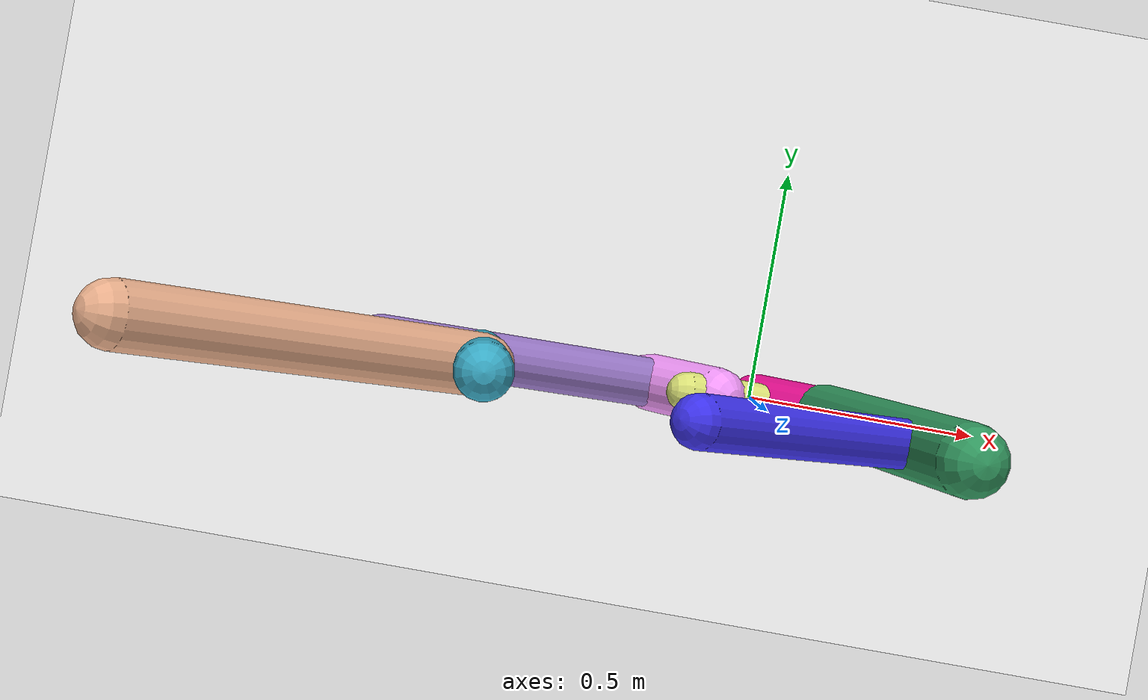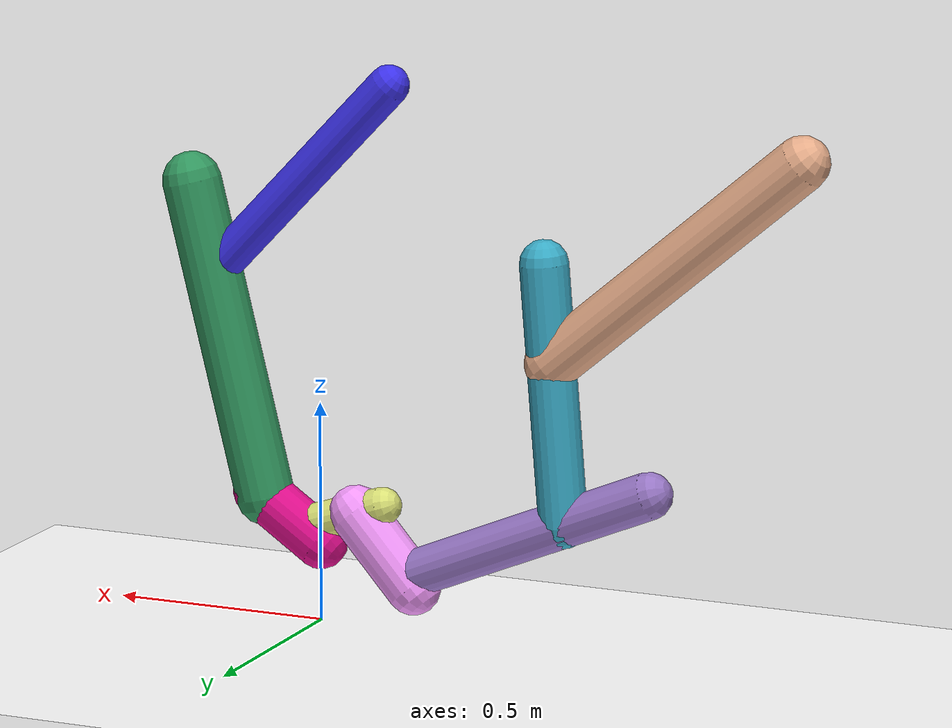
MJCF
<mujoco model="morphology">
  <option timestep="0.01"/>
  <default>
    <default class="/"/>
    <default class="0/"/>
    <default class="0/1/"/>
    <default class="0/1/2/"/>
    <default class="0/3/"/>
    <default class="0/3/4/"/>
    <default class="0/3/4/5/"/>
    <default class="0/3/4/5/6/"/>
    <default class="0/3/4/5/6/7/"/>
  </default>
  <asset>
    <texture name="texplane" type="2d" builtin="checker" rgb1="0.10000000000000001 0.20000000000000001 0.29999999999999999" rgb2="0.20000000000000001 0.29999999999999999 0.40000000000000002" width="300" height="300"/>
    <material name="MatPlane" class="/" texture="texplane" texrepeat="20 20" specular="1" shininess="1" reflectance="0.5"/>
  </asset>
  <worldbody>
    <light name="//unnamed_light_0" class="/" directional="true" pos="0 0 1.5" dir="0 0 -1.3" cutoff="100" exponent="1" diffuse="1 1 1" specular="0.10000000000000001 0.10000000000000001 0.10000000000000001"/>
    <geom name="ground" class="/" type="plane" size="15 15 0.5" material="MatPlane" rgba="1 1 1 1"/>
    <site name="body" class="/" size="9.9999999999999995e-07 9.9999999999999995e-07 9.9999999999999995e-07" pos="0 0 0.17978496700525284"/>
    <body pos="0 0 0.17978496700525284" name="0/">
      <joint name="0/rootx/" class="/" type="slide" axis="1 0 0" limited="false" stiffness="0" armature="0" damping="0"/>
      <joint name="0/rootz/" class="/" type="slide" axis="0 0 1" limited="false" stiffness="0" armature="0" damping="0"/>
      <joint name="0/rooty/" class="/" type="hinge" axis="0 1 0" limited="false" stiffness="0" armature="0" damping="0"/>
      <geom name="0/geom" class="0/" type="capsule" contype="1" conaffinity="1" condim="3" size="0.060027669958981851" rgba="0.88109591707776613 0.050200068633106665 0.55277339552650828 1" friction="0.59999999999999998 0.10000000000000001 0.10000000000000001" fromto="0 0 0 0.15232480187164033 0 0.1036447597580421"/>
      <site name="0/end0" class="0/" size="0.0050000000000000001" pos="0.15232480187164033 0 0.1036447597580421"/>
      <site name="0/attach1" class="0/" size="9.9999999999999995e-07 9.9999999999999995e-07 9.9999999999999995e-07" pos="0.13775599653257789 0 0.093731861065410135"/>
      <body pos="0.13775599653257789 0 0.093731861065410135" name="0/1/">
        <joint name="0/1/joint/" class="0/" type="hinge" axis="0 1 0" limited="true" range="-34.656028028236705 34.656028028236705"/>
        <geom name="0/1/geom" class="0/1/" type="capsule" contype="1" conaffinity="1" condim="3" size="0.066634664695346693" rgba="0.19807407056532078 0.60284311776614619 0.37834973532279925 1" friction="0.59999999999999998 0.10000000000000001 0.10000000000000001" fromto="0 0 0 0.17600074494142537 0 0.70493243263506433"/>
        <site name="0/1/end1" class="0/1/" size="0.0050000000000000001" pos="0.17600074494142537 0 0.70493243263506433"/>
        <site name="0/1/attach2" class="0/1/" size="9.9999999999999995e-07 9.9999999999999995e-07 9.9999999999999995e-07" pos="0.12489722775138447 0 0.50024848825191615"/>
        <body pos="0.12489722775138447 0 0.50024848825191615" name="0/1/2/">
          <joint name="0/1/2/joint/" class="0/1/" type="hinge" axis="0 1 0" limited="true" range="-30.145143384815817 30.145143384815817"/>
          <geom name="0/1/2/geom" class="0/1/2/" type="capsule" contype="1" conaffinity="1" condim="3" size="0.045920355430867685" rgba="0.24288881141239393 0.19938526722380134 0.93484648038832963 1" friction="0.59999999999999998 0.10000000000000001 0.10000000000000001" fromto="0 0 0 -0.43131544751275791 0 0.45549909699951363"/>
          <site name="0/1/2/end2" class="0/1/2/" size="0.0050000000000000001" pos="-0.43131544751275791 0 0.45549909699951363"/>
        </body>
      </body>
      <site name="0/attach3" class="0/" size="9.9999999999999995e-07 9.9999999999999995e-07 9.9999999999999995e-07" pos="0.04937567635199841 0 0.033596171145563743"/>
      <body pos="0.04937567635199841 0 0.033596171145563743" name="0/3/">
        <geom name="0/3/geom" class="0/3/" type="capsule" contype="1" conaffinity="1" condim="3" size="0.043039403826401722" rgba="0.86414958540584774 0.89042233591604236 0.4681249441427332 1" friction="0.59999999999999998 0.10000000000000001 0.10000000000000001" fromto="0 0 0 -0.20034343821938205 0 0.0658694084871847"/>
        <site name="0/3/end3" class="0/3/" size="0.0050000000000000001" pos="-0.20034343821938205 0 0.0658694084871847"/>
        <site name="0/3/attach4" class="0/3/" size="9.9999999999999995e-07 9.9999999999999995e-07 9.9999999999999995e-07" pos="-0.13606499565071647 0 0.04473578400661081"/>
        <body pos="-0.13606499565071647 0 0.04473578400661081" name="0/3/4/">
          <geom name="0/3/4/geom" class="0/3/4/" type="capsule" contype="1" conaffinity="1" condim="3" size="0.061859329033862653" rgba="0.9589226094138199 0.60195138883164256 0.98936413528737333 1" friction="0.59999999999999998 0.10000000000000001 0.10000000000000001" fromto="0 0 0 -0.13906345620383986 0 -0.15811692217923401"/>
          <site name="0/3/4/end4" class="0/3/4/" size="0.0050000000000000001" pos="-0.13906345620383986 0 -0.15811692217923401"/>
          <site name="0/3/4/attach5" class="0/3/4/" size="9.9999999999999995e-07 9.9999999999999995e-07 9.9999999999999995e-07" pos="-0.11845623487807352 0 -0.13468624887624675"/>
          <body pos="-0.11845623487807352 0 -0.13468624887624675" name="0/3/4/5/">
            <geom name="0/3/4/5/geom" class="0/3/4/5/" type="capsule" contype="1" conaffinity="1" condim="3" size="0.053177412939174717" rgba="0.60239063448387653 0.47181615242237562 0.78404829108344565 1" friction="0.59999999999999998 0.10000000000000001 0.10000000000000001" fromto="0 0 0 -0.58265234516968289 0 0.24552158019387438"/>
            <site name="0/3/4/5/end5" class="0/3/4/5/" size="0.0050000000000000001" pos="-0.58265234516968289 0 0.24552158019387438"/>
            <site name="0/3/4/5/attach6" class="0/3/4/5/" size="9.9999999999999995e-07 9.9999999999999995e-07 9.9999999999999995e-07" pos="-0.38088474979420672 0 0.16049952671860968"/>
            <body pos="-0.38088474979420672 0 0.16049952671860968" name="0/3/4/5/6/">
              <joint name="0/3/4/5/6/joint/" class="0/3/4/5/" type="hinge" axis="0 1 0" limited="true" range="-63.712055849765392 63.712055849765392"/>
              <geom name="0/3/4/5/6/geom" class="0/3/4/5/6/" type="capsule" contype="1" conaffinity="1" condim="3" size="0.054671986770164563" rgba="0.22878267205117131 0.67960975474352103 0.78785467238547791 1" friction="0.59999999999999998 0.10000000000000001 0.10000000000000001" fromto="0 0 0 0.048059414149043689 0 0.57897689541502695"/>
              <site name="0/3/4/5/6/end6" class="0/3/4/5/6/" size="0.0050000000000000001" pos="0.048059414149043689 0 0.57897689541502695"/>
              <site name="0/3/4/5/6/attach7" class="0/3/4/5/6/" size="9.9999999999999995e-07 9.9999999999999995e-07 9.9999999999999995e-07" pos="0.029769342077077883 0 0.35863444362601432"/>
              <body pos="0.029769342077077883 0 0.35863444362601432" name="0/3/4/5/6/7/">
                <joint name="0/3/4/5/6/7/joint/" class="0/3/4/5/6/" type="hinge" axis="0 1 0" limited="true" range="-46.685072218397238 46.685072218397238"/>
                <geom name="0/3/4/5/6/7/geom" class="0/3/4/5/6/7/" type="capsule" contype="1" conaffinity="1" condim="3" size="0.060847101288948699" rgba="0.91837221529717572 0.68717445679941846 0.54766318746548259 1" friction="0.59999999999999998 0.10000000000000001 0.10000000000000001" fromto="0 0 0 -0.5759884650086553 0 0.49007924685831794"/>
                <site name="0/3/4/5/6/7/end7" class="0/3/4/5/6/7/" size="0.0050000000000000001" pos="-0.5759884650086553 0 0.49007924685831794"/>
              </body>
            </body>
          </body>
        </body>
      </body>
      <camera name="0/side" class="0/" mode="trackcom" pos="0.40000000000000002 -4 0.20000000000000001" quat="0.70699999999999996 0.70699999999999996 0 0"/>
    </body>
  </worldbody>
  <actuator>
    <motor name="0/1/motor" class="0/1/" ctrllimited="true" ctrlrange="-1 1" gear="60" joint="0/1/joint/"/>
    <motor name="0/1/2/motor" class="0/1/2/" ctrllimited="true" ctrlrange="-1 1" gear="67" joint="0/1/2/joint/"/>
    <motor name="0/3/4/5/6/motor" class="0/3/4/5/6/" ctrllimited="true" ctrlrange="-1 1" gear="74" joint="0/3/4/5/6/joint/"/>
    <motor name="0/3/4/5/6/7/motor" class="0/3/4/5/6/7/" ctrllimited="true" ctrlrange="-1 1" gear="87" joint="0/3/4/5/6/7/joint/"/>
  </actuator>
  <sensor>
    <subtreelinvel name="velocity" body="0/"/>
  </sensor>
</mujoco>
